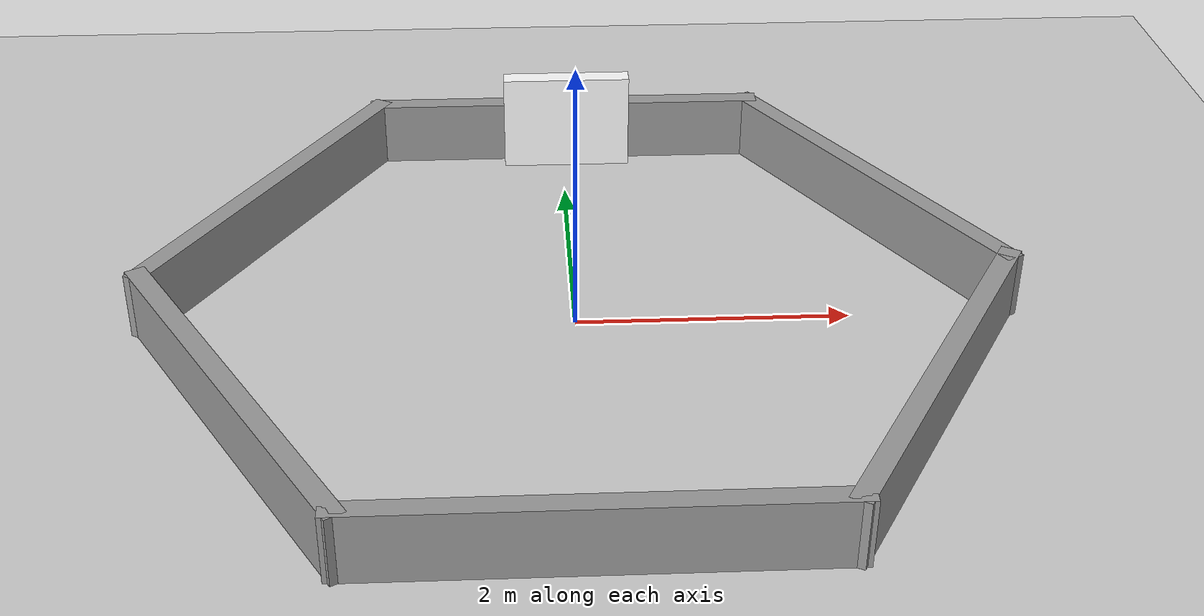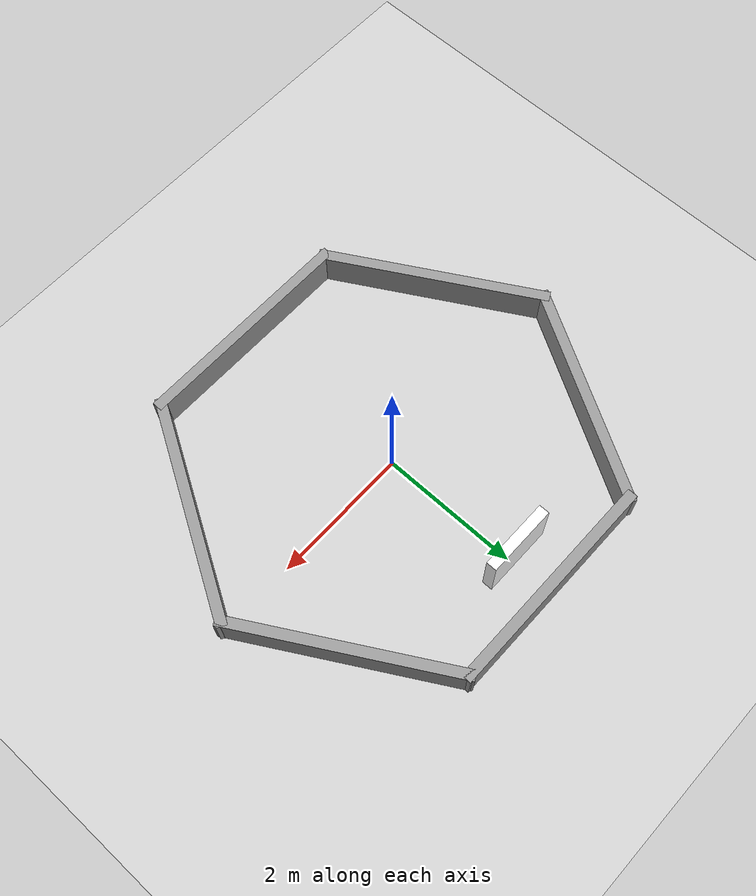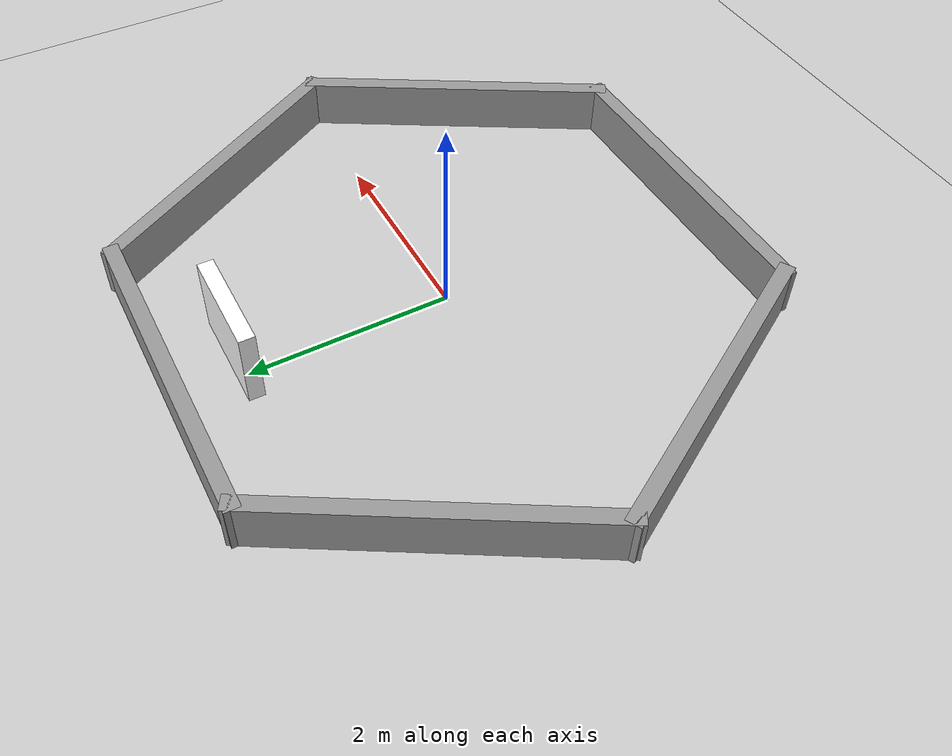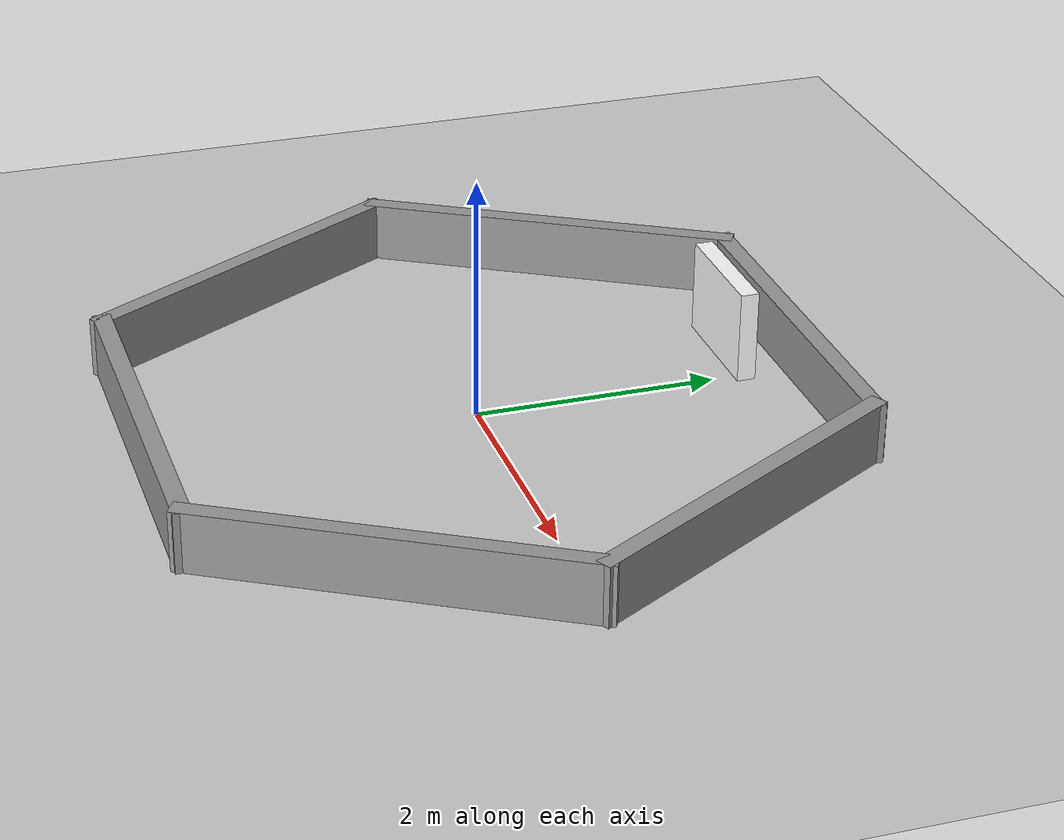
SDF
<sdf version="1.7">
 <world name="default">
  <light name="sun" type="directional">
   <pose>0 0 10 0 -0 0</pose>
   <diffuse>0.8 0.8 0.8 1</diffuse>
   <specular>0.2 0.2 0.2 1</specular>
   <attenuation>
    <range>1000</range>
    <constant>0.9</constant>
    <linear>0.01</linear>
    <quadratic>0.001</quadratic>
   </attenuation>
   <direction>-0.5 0.1 -0.9</direction>
   <spot><inner_angle>0</inner_angle><outer_angle>0</outer_angle><falloff>0</falloff></spot>
  </light>
  <model name="ground_plane">
   <static>1</static>
   <link name="link">
    <collision name="collision">
     <geometry><plane><normal>0 0 1</normal><size>100 100</size></plane></geometry>
     <surface><friction><ode><mu>100</mu><mu2>50</mu2></ode></friction></surface>
    </collision>
    <visual name="visual">
     <cast_shadows>0</cast_shadows>
     <geometry><plane><normal>0 0 1</normal><size>100 100</size></plane></geometry>
     <material>
      <script><uri>file://media/materials/scripts/gazebo.material</uri><name>Gazebo/Grey</name></script>
     </material>
    </visual>
   </link>
  </model>
  <gravity>0 0 -9.8</gravity>
  <magnetic_field>6e-06 2.3e-05 -4.2e-05</magnetic_field>
  <atmosphere type="adiabatic"/>
  <physics type="ode">
   <max_step_size>0.001</max_step_size>
   <real_time_factor>1</real_time_factor>
   <real_time_update_rate>1000</real_time_update_rate>
  </physics>
  <scene><ambient>0.4 0.4 0.4 1</ambient><background>0.7 0.7 0.7 1</background><shadows>1</shadows></scene>
  <audio><device>default</device></audio>
  <spherical_coordinates>
   <surface_model>EARTH_WGS84</surface_model>
   <latitude_deg>0</latitude_deg>
   <longitude_deg>0</longitude_deg>
   <elevation>0</elevation>
   <heading_deg>0</heading_deg>
  </spherical_coordinates>
  <model name="my_POPY_world">
   <pose>0.013372 -0.002 0 0 -0 0</pose>
   <link name="Wall_0">
    <collision name="Wall_0_Collision">
     <geometry><box><size>3.25 0.15 0.5</size></box></geometry>
     <pose>0 0 0.25 0 -0 0</pose>
    </collision>
    <visual name="Wall_0_Visual">
     <pose>0 0 0.25 0 -0 0</pose>
     <geometry><box><size>3.25 0.15 0.5</size></box></geometry>
     <material>
      <script><uri>file://media/materials/scripts/gazebo.material</uri><name>Gazebo/Grey</name></script>
      <ambient>1 1 1 1</ambient>
     </material>
     <meta><layer>0</layer></meta>
    </visual>
    <pose>0.004965 2.68459 0 0 -0 0</pose>
   </link>
   <link name="Wall_1">
    <collision name="Wall_1_Collision">
     <geometry><box><size>3.25 0.15 0.5</size></box></geometry>
     <pose>0 0 0.25 0 -0 0</pose>
    </collision>
    <visual name="Wall_1_Visual">
     <pose>0 0 0.25 0 -0 0</pose>
     <geometry><box><size>3.25 0.15 0.5</size></box></geometry>
     <material>
      <script><uri>file://media/materials/scripts/gazebo.material</uri><name>Gazebo/Grey</name></script>
      <ambient>1 1 1 1</ambient>
     </material>
     <meta><layer>0</layer></meta>
    </visual>
    <pose>2.32997 1.34209 0 0 -0 -1.04725</pose>
   </link>
   <link name="Wall_2">
    <collision name="Wall_2_Collision">
     <geometry><box><size>3.25 0.15 0.5</size></box></geometry>
     <pose>0 0 0.25 0 -0 0</pose>
    </collision>
    <visual name="Wall_2_Visual">
     <pose>0 0 0.25 0 -0 0</pose>
     <geometry><box><size>3.25 0.15 0.5</size></box></geometry>
     <material>
      <script><uri>file://media/materials/scripts/gazebo.material</uri><name>Gazebo/Grey</name></script>
      <ambient>1 1 1 1</ambient>
     </material>
     <meta><layer>0</layer></meta>
    </visual>
    <pose>2.32997 -1.34241 0 0 -0 -2.0945</pose>
   </link>
   <link name="Wall_3">
    <collision name="Wall_3_Collision">
     <geometry><box><size>3.26 0.15 0.5</size></box></geometry>
     <pose>0 0 0.25 0 -0 0</pose>
    </collision>
    <visual name="Wall_3_Visual">
     <pose>0 0 0.25 0 -0 0</pose>
     <geometry><box><size>3.26 0.15 0.5</size></box></geometry>
     <material>
      <script><uri>file://media/materials/scripts/gazebo.material</uri><name>Gazebo/Grey</name></script>
      <ambient>1 1 1 1</ambient>
     </material>
     <meta><layer>0</layer></meta>
    </visual>
    <pose>-3.5e-05 -2.68441 0 0 -0 3.14159</pose>
   </link>
   <link name="Wall_4">
    <collision name="Wall_4_Collision">
     <geometry><box><size>3.24972 0.15 0.5</size></box></geometry>
     <pose>0 0 0.25 0 -0 0</pose>
    </collision>
    <visual name="Wall_4_Visual">
     <pose>0 0 0.25 0 -0 0</pose>
     <geometry><box><size>3.24972 0.15 0.5</size></box></geometry>
     <material>
      <script><uri>file://media/materials/scripts/gazebo.material</uri><name>Gazebo/Grey</name></script>
      <ambient>1 1 1 1</ambient>
     </material>
     <meta><layer>0</layer></meta>
    </visual>
    <pose>-2.33004 -1.34241 0 0 -0 2.0945</pose>
   </link>
   <link name="Wall_5">
    <collision name="Wall_5_Collision">
     <geometry><box><size>3.25529 0.15 0.5</size></box></geometry>
     <pose>0 0 0.25 0 -0 0</pose>
    </collision>
    <visual name="Wall_5_Visual">
     <pose>0 0 0.25 0 -0 0</pose>
     <geometry><box><size>3.25529 0.15 0.5</size></box></geometry>
     <material>
      <script><uri>file://media/materials/scripts/gazebo.material</uri><name>Gazebo/Grey</name></script>
      <ambient>1 1 1 1</ambient>
     </material>
     <meta><layer>0</layer></meta>
    </visual>
    <pose>-2.32504 1.34209 0 0 -0 1.04446</pose>
   </link>
   <static>1</static>
  </model>
  <model name="Painter2_middle">
   <link name="Wall_0">
    <pose>-2.0225 -2.0875 0.25 0 -0 0</pose>
    <inertial>
     <mass>1</mass>
     <inertia><ixx>1</ixx><ixy>0</ixy><ixz>0</ixz><iyy>1</iyy><iyz>0</iyz><izz>1</izz></inertia>
    </inertial>
    <visual name="Wall_0_Visual">
     <pose>0 0 0.375 0 -0 0</pose>
     <geometry><box><size>1 0.15 0.75</size></box></geometry>
     <material>
      <script>
       <uri>model://Painter2/materials/scripts</uri>
       <uri>model://Painter2/materials/textures/</uri>
       <name>Painter2</name>
      </script>
      <ambient>1 1 1 1</ambient>
      <shader type="pixel"><normal_map>__default__</normal_map></shader>
      <diffuse>1 1 1 1</diffuse>
      <specular>0 0 0 1</specular>
      <emissive>0 0 0 1</emissive>
     </material>
     <meta><layer>0</layer></meta>
    </visual>
    <collision name="Wall_0_Collision">
     <pose>0 0 0.375 0 -0 0</pose>
     <geometry><box><size>1 0.15 0.75</size></box></geometry>
     <surface>
      <friction>
       <ode><mu>1</mu><mu2>1</mu2><fdir1>0 0 0</fdir1><slip1>0</slip1><slip2>0</slip2></ode>
       <torsional>
        <coefficient>1</coefficient>
        <patch_radius>0</patch_radius>
        <surface_radius>0</surface_radius>
        <use_patch_radius>1</use_patch_radius>
        <ode><slip>0</slip></ode>
       </torsional>
      </friction>
      <bounce><restitution_coefficient>0</restitution_coefficient><threshold>1e+06</threshold></bounce>
      <contact>
       <collide_without_contact>0</collide_without_contact>
       <collide_without_contact_bitmask>1</collide_without_contact_bitmask>
       <collide_bitmask>1</collide_bitmask>
       <ode>
        <soft_cfm>0</soft_cfm>
        <soft_erp>0.2</soft_erp>
        <kp>1e+13</kp>
        <kd>1</kd>
        <max_vel>0.01</max_vel>
        <min_depth>0</min_depth>
       </ode>
       <bullet>
        <split_impulse>1</split_impulse>
        <split_impulse_penetration_threshold>-0.01</split_impulse_penetration_threshold>
        <soft_cfm>0</soft_cfm>
        <soft_erp>0.2</soft_erp>
        <kp>1e+13</kp>
        <kd>1</kd>
       </bullet>
      </contact>
     </surface>
    </collision>
   </link>
   <static>1</static>
   <pose>2.03701 4.15939 0 0 -0 0</pose>
  </model>
 </world>
</sdf>
